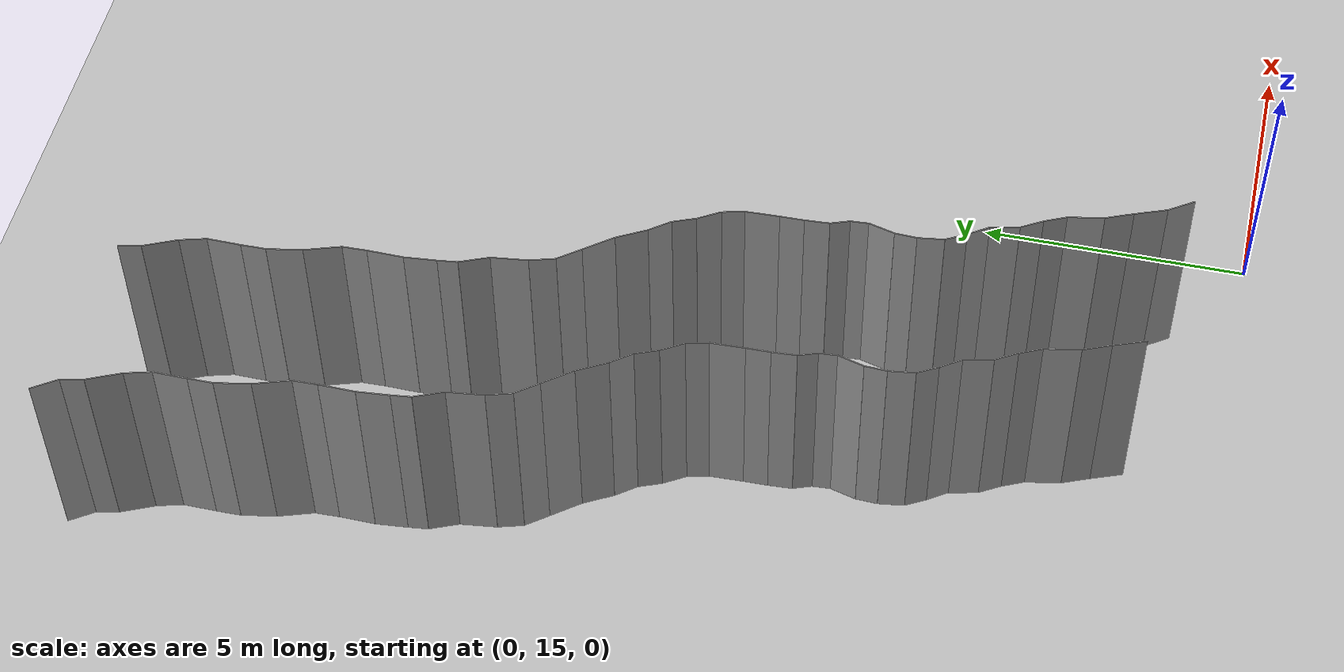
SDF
<sdf version="1.6">
 <world name="default">
  <model name="ground_plane">
   <static>1</static>
   <link name="link">
    <collision name="collision">
     <geometry><plane><normal>0 0 1</normal><size>200 200</size></plane></geometry>
     <surface><friction><ode><mu>100</mu><mu2>50</mu2></ode></friction></surface>
    </collision>
    <visual name="visual">
     <cast_shadows>0</cast_shadows>
     <geometry><plane><normal>0 0 1</normal><size>200 200</size></plane></geometry>
     <material>
      <script><uri>file://media/materials/scripts/gazebo.material</uri><name>Gazebo/Grey</name></script>
     </material>
    </visual>
   </link>
   <pose>0 100 0 0 -0 0</pose>
  </model>
  <model name="wall_73">
   <static>1</static>
   <pose>-1.9631119268316333 16.465281734666583 2 0 0 0.5779256583100791</pose>
   <link name="link">
    <collision name="collision"><geometry><box><size>0.02 0.540771511479 4</size></box></geometry></collision>
    <visual name="visual">
     <material>
      <script><name>Gazebo/Grey</name><uri>file://media/materials/scripts/gazebo.material</uri></script>
     </material>
     <geometry><box><size>0.02 0.540771511479 4</size></box></geometry>
    </visual>
   </link>
  </model>
  <model name="wall_74">
   <static>1</static>
   <pose>-5.2189894164467265 16.98038068064487 2 0 0 0.3585729482220448</pose>
   <link name="link">
    <collision name="collision"><geometry><box><size>0.02 0.616456454361 4</size></box></geometry></collision>
    <visual name="visual">
     <material>
      <script><name>Gazebo/Grey</name><uri>file://media/materials/scripts/gazebo.material</uri></script>
     </material>
     <geometry><box><size>0.02 0.616456454361 4</size></box></geometry>
    </visual>
   </link>
  </model>
  <model name="wall_75">
   <static>1</static>
   <pose>-2.2189894164467265 16.98038068064487 2 0 0 0.3585729482220448</pose>
   <link name="link">
    <collision name="collision"><geometry><box><size>0.02 0.616456454361 4</size></box></geometry></collision>
    <visual name="visual">
     <material>
      <script><name>Gazebo/Grey</name><uri>file://media/materials/scripts/gazebo.material</uri></script>
     </material>
     <geometry><box><size>0.02 0.616456454361 4</size></box></geometry>
    </visual>
   </link>
  </model>
  <model name="wall_76">
   <static>1</static>
   <pose>-5.429013634270137 17.51802696399884 2 0 0 0.388258755482311</pose>
   <link name="link">
    <collision name="collision"><geometry><box><size>0.02 0.538094146848 4</size></box></geometry></collision>
    <visual name="visual">
     <material>
      <script><name>Gazebo/Grey</name><uri>file://media/materials/scripts/gazebo.material</uri></script>
     </material>
     <geometry><box><size>0.02 0.538094146848 4</size></box></geometry>
    </visual>
   </link>
  </model>
  <model name="wall_77">
   <static>1</static>
   <pose>-2.429013634270137 17.51802696399884 2 0 0 0.388258755482311</pose>
   <link name="link">
    <collision name="collision"><geometry><box><size>0.02 0.538094146848 4</size></box></geometry></collision>
    <visual name="visual">
     <material>
      <script><name>Gazebo/Grey</name><uri>file://media/materials/scripts/gazebo.material</uri></script>
     </material>
     <geometry><box><size>0.02 0.538094146848 4</size></box></geometry>
    </visual>
   </link>
  </model>
  <model name="wall_78">
   <static>1</static>
   <pose>-5.592238927250983 18.094138129854752 2 0 0 0.185468775733689</pose>
   <link name="link">
    <collision name="collision"><geometry><box><size>0.02 0.665593706025 4</size></box></geometry></collision>
    <visual name="visual">
     <material>
      <script><name>Gazebo/Grey</name><uri>file://media/materials/scripts/gazebo.material</uri></script>
     </material>
     <geometry><box><size>0.02 0.665593706025 4</size></box></geometry>
    </visual>
   </link>
  </model>
  <model name="wall_79">
   <static>1</static>
   <pose>-2.5922389272509827 18.094138129854752 2 0 0 0.185468775733689</pose>
   <link name="link">
    <collision name="collision"><geometry><box><size>0.02 0.665593706025 4</size></box></geometry></collision>
    <visual name="visual">
     <material>
      <script><name>Gazebo/Grey</name><uri>file://media/materials/scripts/gazebo.material</uri></script>
     </material>
     <geometry><box><size>0.02 0.665593706025 4</size></box></geometry>
    </visual>
   </link>
  </model>
  <model name="wall_80">
   <static>1</static>
   <pose>-5.744420689968435 18.62157502755074 2 0 0 0.4255702106414798</pose>
   <link name="link">
    <collision name="collision"><geometry><box><size>0.02 0.439935826207 4</size></box></geometry></collision>
    <visual name="visual">
     <material>
      <script><name>Gazebo/Grey</name><uri>file://media/materials/scripts/gazebo.material</uri></script>
     </material>
     <geometry><box><size>0.02 0.439935826207 4</size></box></geometry>
    </visual>
   </link>
  </model>
  <model name="wall_81">
   <static>1</static>
   <pose>-2.744420689968435 18.62157502755074 2 0 0 0.4255702106414798</pose>
   <link name="link">
    <collision name="collision"><geometry><box><size>0.02 0.439935826207 4</size></box></geometry></collision>
    <visual name="visual">
     <material>
      <script><name>Gazebo/Grey</name><uri>file://media/materials/scripts/gazebo.material</uri></script>
     </material>
     <geometry><box><size>0.02 0.439935826207 4</size></box></geometry>
    </visual>
   </link>
  </model>
  <model name="wall_82">
   <static>1</static>
   <pose>-5.946961796509764 19.01404491307644 2 0 0 0.5267457993279648</pose>
   <link name="link">
    <collision name="collision"><geometry><box><size>0.02 0.444497374967 4</size></box></geometry></collision>
    <visual name="visual">
     <material>
      <script><name>Gazebo/Grey</name><uri>file://media/materials/scripts/gazebo.material</uri></script>
     </material>
     <geometry><box><size>0.02 0.444497374967 4</size></box></geometry>
    </visual>
   </link>
  </model>
  <model name="wall_83">
   <static>1</static>
   <pose>-2.946961796509764 19.01404491307644 2 0 0 0.5267457993279648</pose>
   <link name="link">
    <collision name="collision"><geometry><box><size>0.02 0.444497374967 4</size></box></geometry></collision>
    <visual name="visual">
     <material>
      <script><name>Gazebo/Grey</name><uri>file://media/materials/scripts/gazebo.material</uri></script>
     </material>
     <geometry><box><size>0.02 0.444497374967 4</size></box></geometry>
    </visual>
   </link>
  </model>
  <model name="wall_84">
   <static>1</static>
   <pose>-6.117549493607555 19.471081117429776 2 0 0 0.21862736636002605</pose>
   <link name="link">
    <collision name="collision"><geometry><box><size>0.02 0.542747229067 4</size></box></geometry></collision>
    <visual name="visual">
     <material>
      <script><name>Gazebo/Grey</name><uri>file://media/materials/scripts/gazebo.material</uri></script>
     </material>
     <geometry><box><size>0.02 0.542747229067 4</size></box></geometry>
    </visual>
   </link>
  </model>
  <model name="wall_85">
   <static>1</static>
   <pose>-3.117549493607555 19.471081117429776 2 0 0 0.21862736636002605</pose>
   <link name="link">
    <collision name="collision"><geometry><box><size>0.02 0.542747229067 4</size></box></geometry></collision>
    <visual name="visual">
     <material>
      <script><name>Gazebo/Grey</name><uri>file://media/materials/scripts/gazebo.material</uri></script>
     </material>
     <geometry><box><size>0.02 0.542747229067 4</size></box></geometry>
    </visual>
   </link>
  </model>
  <model name="wall_86">
   <static>1</static>
   <pose>-6.297129075317542 19.919119000872467 2 0 0 0.5828385238928118</pose>
   <link name="link">
    <collision name="collision"><geometry><box><size>0.02 0.438671008973 4</size></box></geometry></collision>
    <visual name="visual">
     <material>
      <script><name>Gazebo/Grey</name><uri>file://media/materials/scripts/gazebo.material</uri></script>
     </material>
     <geometry><box><size>0.02 0.438671008973 4</size></box></geometry>
    </visual>
   </link>
  </model>
  <model name="wall_87">
   <static>1</static>
   <pose>-3.2971290753175424 19.919119000872467 2 0 0 0.5828385238928118</pose>
   <link name="link">
    <collision name="collision"><geometry><box><size>0.02 0.438671008973 4</size></box></geometry></collision>
    <visual name="visual">
     <material>
      <script><name>Gazebo/Grey</name><uri>file://media/materials/scripts/gazebo.material</uri></script>
     </material>
     <geometry><box><size>0.02 0.438671008973 4</size></box></geometry>
    </visual>
   </link>
  </model>
  <model name="wall_88">
   <static>1</static>
   <pose>-6.516425880368038 20.284080225928516 2 0 0 0.49676395146185637</pose>
   <link name="link">
    <collision name="collision"><geometry><box><size>0.02 0.413675616735 4</size></box></geometry></collision>
    <visual name="visual">
     <material>
      <script><name>Gazebo/Grey</name><uri>file://media/materials/scripts/gazebo.material</uri></script>
     </material>
     <geometry><box><size>0.02 0.413675616735 4</size></box></geometry>
    </visual>
   </link>
  </model>
  <model name="wall_89">
   <static>1</static>
   <pose>-3.516425880368038 20.284080225928516 2 0 0 0.49676395146185637</pose>
   <link name="link">
    <collision name="collision"><geometry><box><size>0.02 0.413675616735 4</size></box></geometry></collision>
    <visual name="visual">
     <material>
      <script><name>Gazebo/Grey</name><uri>file://media/materials/scripts/gazebo.material</uri></script>
     </material>
     <geometry><box><size>0.02 0.413675616735 4</size></box></geometry>
    </visual>
   </link>
  </model>
  <model name="wall_90">
   <static>1</static>
   <pose>-6.6481592495696615 20.708685950705604 2 0 0 0.13574268235274892</pose>
   <link name="link">
    <collision name="collision"><geometry><box><size>0.02 0.490044923519 4</size></box></geometry></collision>
    <visual name="visual">
     <material>
      <script><name>Gazebo/Grey</name><uri>file://media/materials/scripts/gazebo.material</uri></script>
     </material>
     <geometry><box><size>0.02 0.490044923519 4</size></box></geometry>
    </visual>
   </link>
  </model>
  <model name="wall_91">
   <static>1</static>
   <pose>-3.6481592495696615 20.708685950705604 2 0 0 0.13574268235274892</pose>
   <link name="link">
    <collision name="collision"><geometry><box><size>0.02 0.490044923519 4</size></box></geometry></collision>
    <visual name="visual">
     <material>
      <script><name>Gazebo/Grey</name><uri>file://media/materials/scripts/gazebo.material</uri></script>
     </material>
     <geometry><box><size>0.02 0.490044923519 4</size></box></geometry>
    </visual>
   </link>
  </model>
  <model name="wall_92">
   <static>1</static>
   <pose>-6.671682170407955 21.155121208114892 2 0 0 -0.047272616302952916</pose>
   <link name="link">
    <collision name="collision"><geometry><box><size>0.02 0.407789023775 4</size></box></geometry></collision>
    <visual name="visual">
     <material>
      <script><name>Gazebo/Grey</name><uri>file://media/materials/scripts/gazebo.material</uri></script>
     </material>
     <geometry><box><size>0.02 0.407789023775 4</size></box></geometry>
    </visual>
   </link>
  </model>
  <model name="wall_93">
   <static>1</static>
   <pose>-3.671682170407955 21.155121208114892 2 0 0 -0.047272616302952916</pose>
   <link name="link">
    <collision name="collision"><geometry><box><size>0.02 0.407789023775 4</size></box></geometry></collision>
    <visual name="visual">
     <material>
      <script><name>Gazebo/Grey</name><uri>file://media/materials/scripts/gazebo.material</uri></script>
     </material>
     <geometry><box><size>0.02 0.407789023775 4</size></box></geometry>
    </visual>
   </link>
  </model>
  <model name="wall_94">
   <static>1</static>
   <pose>-6.597538932960623 21.600337958711496 2 0 0 -0.26096900439358683</pose>
   <link name="link">
    <collision name="collision"><geometry><box><size>0.02 0.500030874961 4</size></box></geometry></collision>
    <visual name="visual">
     <material>
      <script><name>Gazebo/Grey</name><uri>file://media/materials/scripts/gazebo.material</uri></script>
     </material>
     <geometry><box><size>0.02 0.500030874961 4</size></box></geometry>
    </visual>
   </link>
  </model>
  <model name="wall_95">
   <static>1</static>
   <pose>-3.5975389329606227 21.600337958711496 2 0 0 -0.26096900439358683</pose>
   <link name="link">
    <collision name="collision"><geometry><box><size>0.02 0.500030874961 4</size></box></geometry></collision>
    <visual name="visual">
     <material>
      <script><name>Gazebo/Grey</name><uri>file://media/materials/scripts/gazebo.material</uri></script>
     </material>
     <geometry><box><size>0.02 0.500030874961 4</size></box></geometry>
    </visual>
   </link>
  </model>
  <model name="wall_96">
   <static>1</static>
   <pose>-6.543762042301158 22.008422184159315 2 0 0 0.06435009826860509</pose>
   <link name="link">
    <collision name="collision"><geometry><box><size>0.02 0.333759214409 4</size></box></geometry></collision>
    <visual name="visual">
     <material>
      <script><name>Gazebo/Grey</name><uri>file://media/materials/scripts/gazebo.material</uri></script>
     </material>
     <geometry><box><size>0.02 0.333759214409 4</size></box></geometry>
    </visual>
   </link>
  </model>
  <model name="wall_97">
   <static>1</static>
   <pose>-3.543762042301158 22.008422184159315 2 0 0 0.06435009826860509</pose>
   <link name="link">
    <collision name="collision"><geometry><box><size>0.02 0.333759214409 4</size></box></geometry></collision>
    <visual name="visual">
     <material>
      <script><name>Gazebo/Grey</name><uri>file://media/materials/scripts/gazebo.material</uri></script>
     </material>
     <geometry><box><size>0.02 0.333759214409 4</size></box></geometry>
    </visual>
   </link>
  </model>
  <model name="wall_98">
   <static>1</static>
   <pose>-6.615852534136043 22.34731619755842 2 0 0 0.3420053220446105</pose>
   <link name="link">
    <collision name="collision"><geometry><box><size>0.02 0.365911748592 4</size></box></geometry></collision>
    <visual name="visual">
     <material>
      <script><name>Gazebo/Grey</name><uri>file://media/materials/scripts/gazebo.material</uri></script>
     </material>
     <geometry><box><size>0.02 0.365911748592 4</size></box></geometry>
    </visual>
   </link>
  </model>
  <model name="wall_99">
   <static>1</static>
   <pose>-3.6158525341360432 22.34731619755842 2 0 0 0.3420053220446105</pose>
   <link name="link">
    <collision name="collision"><geometry><box><size>0.02 0.365911748592 4</size></box></geometry></collision>
    <visual name="visual">
     <material>
      <script><name>Gazebo/Grey</name><uri>file://media/materials/scripts/gazebo.material</uri></script>
     </material>
     <geometry><box><size>0.02 0.365911748592 4</size></box></geometry>
    </visual>
   </link>
  </model>
  <model name="wall_100">
   <static>1</static>
   <pose>-6.690214426542392 22.747344946603032 2 0 0 0.05705038092665243</pose>
   <link name="link">
    <collision name="collision"><geometry><box><size>0.02 0.456079897313 4</size></box></geometry></collision>
    <visual name="visual">
     <material>
      <script><name>Gazebo/Grey</name><uri>file://media/materials/scripts/gazebo.material</uri></script>
     </material>
     <geometry><box><size>0.02 0.456079897313 4</size></box></geometry>
    </visual>
   </link>
  </model>
  <model name="wall_101">
   <static>1</static>
   <pose>-3.6902144265423917 22.747344946603032 2 0 0 0.05705038092665243</pose>
   <link name="link">
    <collision name="collision"><geometry><box><size>0.02 0.456079897313 4</size></box></geometry></collision>
    <visual name="visual">
     <material>
      <script><name>Gazebo/Grey</name><uri>file://media/materials/scripts/gazebo.material</uri></script>
     </material>
     <geometry><box><size>0.02 0.456079897313 4</size></box></geometry>
    </visual>
   </link>
  </model>
  <model name="wall_102">
   <static>1</static>
   <pose>-6.706503743326101 23.197165985680666 2 0 0 0.014793320674463073</pose>
   <link name="link">
    <collision name="collision"><geometry><box><size>0.02 0.444352812375 4</size></box></geometry></collision>
    <visual name="visual">
     <material>
      <script><name>Gazebo/Grey</name><uri>file://media/materials/scripts/gazebo.material</uri></script>
     </material>
     <geometry><box><size>0.02 0.444352812375 4</size></box></geometry>
    </visual>
   </link>
  </model>
  <model name="wall_103">
   <static>1</static>
   <pose>-3.7065037433261008 23.197165985680666 2 0 0 0.014793320674463073</pose>
   <link name="link">
    <collision name="collision"><geometry><box><size>0.02 0.444352812375 4</size></box></geometry></collision>
    <visual name="visual">
     <material>
      <script><name>Gazebo/Grey</name><uri>file://media/materials/scripts/gazebo.material</uri></script>
     </material>
     <geometry><box><size>0.02 0.444352812375 4</size></box></geometry>
    </visual>
   </link>
  </model>
  <model name="wall_104">
   <static>1</static>
   <pose>-6.719811738944951 23.733046421032498 2 0 0 0.03193202864452649</pose>
   <link name="link">
    <collision name="collision"><geometry><box><size>0.02 0.62777670951 4</size></box></geometry></collision>
    <visual name="visual">
     <material>
      <script><name>Gazebo/Grey</name><uri>file://media/materials/scripts/gazebo.material</uri></script>
     </material>
     <geometry><box><size>0.02 0.62777670951 4</size></box></geometry>
    </visual>
   </link>
  </model>
  <model name="wall_105">
   <static>1</static>
   <pose>-3.7198117389449514 23.733046421032498 2 0 0 0.03193202864452649</pose>
   <link name="link">
    <collision name="collision"><geometry><box><size>0.02 0.62777670951 4</size></box></geometry></collision>
    <visual name="visual">
     <material>
      <script><name>Gazebo/Grey</name><uri>file://media/materials/scripts/gazebo.material</uri></script>
     </material>
     <geometry><box><size>0.02 0.62777670951 4</size></box></geometry>
    </visual>
   </link>
  </model>
  <model name="wall_106">
   <static>1</static>
   <pose>-6.77884148922455 24.24936823142166 2 0 0 0.23734539275271477</pose>
   <link name="link">
    <collision name="collision"><geometry><box><size>0.02 0.416873764801 4</size></box></geometry></collision>
    <visual name="visual">
     <material>
      <script><name>Gazebo/Grey</name><uri>file://media/materials/scripts/gazebo.material</uri></script>
     </material>
     <geometry><box><size>0.02 0.416873764801 4</size></box></geometry>
    </visual>
   </link>
  </model>
  <model name="wall_107">
   <static>1</static>
   <pose>-3.7788414892245497 24.24936823142166 2 0 0 0.23734539275271477</pose>
   <link name="link">
    <collision name="collision"><geometry><box><size>0.02 0.416873764801 4</size></box></geometry></collision>
    <visual name="visual">
     <material>
      <script><name>Gazebo/Grey</name><uri>file://media/materials/scripts/gazebo.material</uri></script>
     </material>
     <geometry><box><size>0.02 0.416873764801 4</size></box></geometry>
    </visual>
   </link>
  </model>
  <model name="wall_108">
   <static>1</static>
   <pose>-6.948363093024055 24.65370812165242 2 0 0 0.5384687605052095</pose>
   <link name="link">
    <collision name="collision"><geometry><box><size>0.02 0.470000252215 4</size></box></geometry></collision>
    <visual name="visual">
     <material>
      <script><name>Gazebo/Grey</name><uri>file://media/materials/scripts/gazebo.material</uri></script>
     </material>
     <geometry><box><size>0.02 0.470000252215 4</size></box></geometry>
    </visual>
   </link>
  </model>
  <model name="wall_109">
   <static>1</static>
   <pose>-3.9483630930240547 24.65370812165242 2 0 0 0.5384687605052095</pose>
   <link name="link">
    <collision name="collision"><geometry><box><size>0.02 0.470000252215 4</size></box></geometry></collision>
    <visual name="visual">
     <material>
      <script><name>Gazebo/Grey</name><uri>file://media/materials/scripts/gazebo.material</uri></script>
     </material>
     <geometry><box><size>0.02 0.470000252215 4</size></box></geometry>
    </visual>
   </link>
  </model>
  <model name="wall_110">
   <static>1</static>
   <pose>-7.150614478456722 25.062721843203114 2 0 0 0.3756357489796197</pose>
   <link name="link">
    <collision name="collision"><geometry><box><size>0.02 0.44560457186 4</size></box></geometry></collision>
    <visual name="visual">
     <material>
      <script><name>Gazebo/Grey</name><uri>file://media/materials/scripts/gazebo.material</uri></script>
     </material>
     <geometry><box><size>0.02 0.44560457186 4</size></box></geometry>
    </visual>
   </link>
  </model>
  <model name="wall_111">
   <static>1</static>
   <pose>-4.150614478456722 25.062721843203114 2 0 0 0.3756357489796197</pose>
   <link name="link">
    <collision name="collision"><geometry><box><size>0.02 0.44560457186 4</size></box></geometry></collision>
    <visual name="visual">
     <material>
      <script><name>Gazebo/Grey</name><uri>file://media/materials/scripts/gazebo.material</uri></script>
     </material>
     <geometry><box><size>0.02 0.44560457186 4</size></box></geometry>
    </visual>
   </link>
  </model>
  <model name="wall_112">
   <static>1</static>
   <pose>-7.370624029140495 25.456211029345255 2 0 0 0.6386895449676522</pose>
   <link name="link">
    <collision name="collision"><geometry><box><size>0.02 0.463886073 4</size></box></geometry></collision>
    <visual name="visual">
     <material>
      <script><name>Gazebo/Grey</name><uri>file://media/materials/scripts/gazebo.material</uri></script>
     </material>
     <geometry><box><size>0.02 0.463886073 4</size></box></geometry>
    </visual>
   </link>
  </model>
  <model name="wall_113">
   <static>1</static>
   <pose>-4.370624029140495 25.456211029345255 2 0 0 0.6386895449676522</pose>
   <link name="link">
    <collision name="collision"><geometry><box><size>0.02 0.463886073 4</size></box></geometry></collision>
    <visual name="visual">
     <material>
      <script><name>Gazebo/Grey</name><uri>file://media/materials/scripts/gazebo.material</uri></script>
     </material>
     <geometry><box><size>0.02 0.463886073 4</size></box></geometry>
    </visual>
   </link>
  </model>
  <model name="wall_114">
   <static>1</static>
   <pose>-7.65387520175877 25.90808310781274 2 0 0 0.499577798347914</pose>
   <link name="link">
    <collision name="collision"><geometry><box><size>0.02 0.605274014488 4</size></box></geometry></collision>
    <visual name="visual">
     <material>
      <script><name>Gazebo/Grey</name><uri>file://media/materials/scripts/gazebo.material</uri></script>
     </material>
     <geometry><box><size>0.02 0.605274014488 4</size></box></geometry>
    </visual>
   </link>
  </model>
  <model name="wall_115">
   <static>1</static>
   <pose>-4.65387520175877 25.90808310781274 2 0 0 0.499577798347914</pose>
   <link name="link">
    <collision name="collision"><geometry><box><size>0.02 0.605274014488 4</size></box></geometry></collision>
    <visual name="visual">
     <material>
      <script><name>Gazebo/Grey</name><uri>file://media/materials/scripts/gazebo.material</uri></script>
     </material>
     <geometry><box><size>0.02 0.605274014488 4</size></box></geometry>
    </visual>
   </link>
  </model>
  <model name="wall_116">
   <static>1</static>
   <pose>-7.991979326991487 26.427680358967727 2 0 0 0.6501813810294024</pose>
   <link name="link">
    <collision name="collision"><geometry><box><size>0.02 0.638078760111 4</size></box></geometry></collision>
    <visual name="visual">
     <material>
      <script><name>Gazebo/Grey</name><uri>file://media/materials/scripts/gazebo.material</uri></script>
     </material>
     <geometry><box><size>0.02 0.638078760111 4</size></box></geometry>
    </visual>
   </link>
  </model>
  <model name="wall_117">
   <static>1</static>
   <pose>-4.991979326991487 26.427680358967727 2 0 0 0.6501813810294024</pose>
   <link name="link">
    <collision name="collision"><geometry><box><size>0.02 0.638078760111 4</size></box></geometry></collision>
    <visual name="visual">
     <material>
      <script><name>Gazebo/Grey</name><uri>file://media/materials/scripts/gazebo.material</uri></script>
     </material>
     <geometry><box><size>0.02 0.638078760111 4</size></box></geometry>
    </visual>
   </link>
  </model>
  <model name="wall_118">
   <static>1</static>
   <pose>-8.334055194801007 26.87906985543618 2 0 0 0.646314172065566</pose>
   <link name="link">
    <collision name="collision"><geometry><box><size>0.02 0.494651670189 4</size></box></geometry></collision>
    <visual name="visual">
     <material>
      <script><name>Gazebo/Grey</name><uri>file://media/materials/scripts/gazebo.material</uri></script>
     </material>
     <geometry><box><size>0.02 0.494651670189 4</size></box></geometry>
    </visual>
   </link>
  </model>
  <model name="wall_119">
   <static>1</static>
   <pose>-5.334055194801007 26.87906985543618 2 0 0 0.646314172065566</pose>
   <link name="link">
    <collision name="collision"><geometry><box><size>0.02 0.494651670189 4</size></box></geometry></collision>
    <visual name="visual">
     <material>
      <script><name>Gazebo/Grey</name><uri>file://media/materials/scripts/gazebo.material</uri></script>
     </material>
     <geometry><box><size>0.02 0.494651670189 4</size></box></geometry>
    </visual>
   </link>
  </model>
  <model name="wall_120">
   <static>1</static>
   <pose>-8.550628394778697 27.308514859505298 2 0 0 0.283612473526069</pose>
   <link name="link">
    <collision name="collision"><geometry><box><size>0.02 0.483313078969 4</size></box></geometry></collision>
    <visual name="visual">
     <material>
      <script><name>Gazebo/Grey</name><uri>file://media/materials/scripts/gazebo.material</uri></script>
     </material>
     <geometry><box><size>0.02 0.483313078969 4</size></box></geometry>
    </visual>
   </link>
  </model>
  <model name="wall_121">
   <static>1</static>
   <pose>-5.5506283947786965 27.308514859505298 2 0 0 0.283612473526069</pose>
   <link name="link">
    <collision name="collision"><geometry><box><size>0.02 0.483313078969 4</size></box></geometry></collision>
    <visual name="visual">
     <material>
      <script><name>Gazebo/Grey</name><uri>file://media/materials/scripts/gazebo.material</uri></script>
     </material>
     <geometry><box><size>0.02 0.483313078969 4</size></box></geometry>
    </visual>
   </link>
  </model>
  <model name="wall_122">
   <static>1</static>
   <pose>-8.659121818850904 27.878086570502177 2 0 0 0.12049012879172184</pose>
   <link name="link">
    <collision name="collision"><geometry><box><size>0.02 0.680068900343 4</size></box></geometry></collision>
    <visual name="visual">
     <material>
      <script><name>Gazebo/Grey</name><uri>file://media/materials/scripts/gazebo.material</uri></script>
     </material>
     <geometry><box><size>0.02 0.680068900343 4</size></box></geometry>
    </visual>
   </link>
  </model>
  <model name="wall_123">
   <static>1</static>
   <pose>-5.659121818850904 27.878086570502177 2 0 0 0.12049012879172184</pose>
   <link name="link">
    <collision name="collision"><geometry><box><size>0.02 0.680068900343 4</size></box></geometry></collision>
    <visual name="visual">
     <material>
      <script><name>Gazebo/Grey</name><uri>file://media/materials/scripts/gazebo.material</uri></script>
     </material>
     <geometry><box><size>0.02 0.680068900343 4</size></box></geometry>
    </visual>
   </link>
  </model>
  <model name="wall_124">
   <static>1</static>
   <pose>-8.809018211235554 28.479144820289548 2 0 0 0.3923229274872061</pose>
   <link name="link">
    <collision name="collision"><geometry><box><size>0.02 0.57030828163 4</size></box></geometry></collision>
    <visual name="visual">
     <material>
      <script><name>Gazebo/Grey</name><uri>file://media/materials/scripts/gazebo.material</uri></script>
     </material>
     <geometry><box><size>0.02 0.57030828163 4</size></box></geometry>
    </visual>
   </link>
  </model>
  <model name="wall_125">
   <static>1</static>
   <pose>-5.8090182112355535 28.479144820289548 2 0 0 0.3923229274872061</pose>
   <link name="link">
    <collision name="collision"><geometry><box><size>0.02 0.57030828163 4</size></box></geometry></collision>
    <visual name="visual">
     <material>
      <script><name>Gazebo/Grey</name><uri>file://media/materials/scripts/gazebo.material</uri></script>
     </material>
     <geometry><box><size>0.02 0.57030828163 4</size></box></geometry>
    </visual>
   </link>
  </model>
  <model name="wall_126">
   <static>1</static>
   <pose>-8.939539505376409 28.92630043909996 2 0 0 0.11651156712576041</pose>
   <link name="link">
    <collision name="collision"><geometry><box><size>0.02 0.369840475196 4</size></box></geometry></collision>
    <visual name="visual">
     <material>
      <script><name>Gazebo/Grey</name><uri>file://media/materials/scripts/gazebo.material</uri></script>
     </material>
     <geometry><box><size>0.02 0.369840475196 4</size></box></geometry>
    </visual>
   </link>
  </model>
  <model name="wall_127">
   <static>1</static>
   <pose>-5.939539505376409 28.92630043909996 2 0 0 0.11651156712576041</pose>
   <link name="link">
    <collision name="collision"><geometry><box><size>0.02 0.369840475196 4</size></box></geometry></collision>
    <visual name="visual">
     <material>
      <script><name>Gazebo/Grey</name><uri>file://media/materials/scripts/gazebo.material</uri></script>
     </material>
     <geometry><box><size>0.02 0.369840475196 4</size></box></geometry>
    </visual>
   </link>
  </model>
  <model name="wall_128">
   <static>1</static>
   <pose>-8.987577649966394 29.40832038964658 2 0 0 0.08872639993089475</pose>
   <link name="link">
    <collision name="collision"><geometry><box><size>0.02 0.599063348387 4</size></box></geometry></collision>
    <visual name="visual">
     <material>
      <script><name>Gazebo/Grey</name><uri>file://media/materials/scripts/gazebo.material</uri></script>
     </material>
     <geometry><box><size>0.02 0.599063348387 4</size></box></geometry>
    </visual>
   </link>
  </model>
  <model name="wall_129">
   <static>1</static>
   <pose>-5.9875776499663935 29.40832038964658 2 0 0 0.08872639993089475</pose>
   <link name="link">
    <collision name="collision"><geometry><box><size>0.02 0.599063348387 4</size></box></geometry></collision>
    <visual name="visual">
     <material>
      <script><name>Gazebo/Grey</name><uri>file://media/materials/scripts/gazebo.material</uri></script>
     </material>
     <geometry><box><size>0.02 0.599063348387 4</size></box></geometry>
    </visual>
   </link>
  </model>
  <model name="wall_130">
   <static>1</static>
   <pose>-9.008194881643544 30.041585597283078 2 0 0 -0.017687229887613665</pose>
   <link name="link">
    <collision name="collision"><geometry><box><size>0.02 0.669928332553 4</size></box></geometry></collision>
    <visual name="visual">
     <material>
      <script><name>Gazebo/Grey</name><uri>file://media/materials/scripts/gazebo.material</uri></script>
     </material>
     <geometry><box><size>0.02 0.669928332553 4</size></box></geometry>
    </visual>
   </link>
  </model>
  <model name="wall_131">
   <static>1</static>
   <pose>-6.0081948816435435 30.041585597283078 2 0 0 -0.017687229887613665</pose>
   <link name="link">
    <collision name="collision"><geometry><box><size>0.02 0.669928332553 4</size></box></geometry></collision>
    <visual name="visual">
     <material>
      <script><name>Gazebo/Grey</name><uri>file://media/materials/scripts/gazebo.material</uri></script>
     </material>
     <geometry><box><size>0.02 0.669928332553 4</size></box></geometry>
    </visual>
   </link>
  </model>
  <model name="wall_132">
   <static>1</static>
   <pose>-9.007965354640962 30.60278689857153 2 0 0 0.02516046859088362</pose>
   <link name="link">
    <collision name="collision"><geometry><box><size>0.02 0.452722347042 4</size></box></geometry></collision>
    <visual name="visual">
     <material>
      <script><name>Gazebo/Grey</name><uri>file://media/materials/scripts/gazebo.material</uri></script>
     </material>
     <geometry><box><size>0.02 0.452722347042 4</size></box></geometry>
    </visual>
   </link>
  </model>
  <model name="wall_133">
   <static>1</static>
   <pose>-6.007965354640962 30.60278689857153 2 0 0 0.02516046859088362</pose>
   <link name="link">
    <collision name="collision"><geometry><box><size>0.02 0.452722347042 4</size></box></geometry></collision>
    <visual name="visual">
     <material>
      <script><name>Gazebo/Grey</name><uri>file://media/materials/scripts/gazebo.material</uri></script>
     </material>
     <geometry><box><size>0.02 0.452722347042 4</size></box></geometry>
    </visual>
   </link>
  </model>
  <model name="wall_134">
   <static>1</static>
   <pose>-9.120851475267049 31.1571562491707 2 0 0 0.3157899016740692</pose>
   <link name="link">
    <collision name="collision"><geometry><box><size>0.02 0.690293732149 4</size></box></geometry></collision>
    <visual name="visual">
     <material>
      <script><name>Gazebo/Grey</name><uri>file://media/materials/scripts/gazebo.material</uri></script>
     </material>
     <geometry><box><size>0.02 0.690293732149 4</size></box></geometry>
    </visual>
   </link>
  </model>
  <model name="wall_135">
   <static>1</static>
   <pose>-6.120851475267049 31.1571562491707 2 0 0 0.3157899016740692</pose>
   <link name="link">
    <collision name="collision"><geometry><box><size>0.02 0.690293732149 4</size></box></geometry></collision>
    <visual name="visual">
     <material>
      <script><name>Gazebo/Grey</name><uri>file://media/materials/scripts/gazebo.material</uri></script>
     </material>
     <geometry><box><size>0.02 0.690293732149 4</size></box></geometry>
    </visual>
   </link>
  </model>
  <model name="wall_136">
   <static>1</static>
   <pose>-9.285880254306491 31.807191610973586 2 0 0 0.177748178805022</pose>
   <link name="link">
    <collision name="collision"><geometry><box><size>0.02 0.654218726651 4</size></box></geometry></collision>
    <visual name="visual">
     <material>
      <script><name>Gazebo/Grey</name><uri>file://media/materials/scripts/gazebo.material</uri></script>
     </material>
     <geometry><box><size>0.02 0.654218726651 4</size></box></geometry>
    </visual>
   </link>
  </model>
  <model name="wall_137">
   <static>1</static>
   <pose>-6.285880254306491 31.807191610973586 2 0 0 0.177748178805022</pose>
   <link name="link">
    <collision name="collision"><geometry><box><size>0.02 0.654218726651 4</size></box></geometry></collision>
    <visual name="visual">
     <material>
      <script><name>Gazebo/Grey</name><uri>file://media/materials/scripts/gazebo.material</uri></script>
     </material>
     <geometry><box><size>0.02 0.654218726651 4</size></box></geometry>
    </visual>
   </link>
  </model>
  <model name="wall_138">
   <static>1</static>
   <pose>-9.345895797588234 32.35864689553095 2 0 0 0.009490499281462558</pose>
   <link name="link">
    <collision name="collision"><geometry><box><size>0.02 0.459020161582 4</size></box></geometry></collision>
    <visual name="visual">
     <material>
      <script><name>Gazebo/Grey</name><uri>file://media/materials/scripts/gazebo.material</uri></script>
     </material>
     <geometry><box><size>0.02 0.459020161582 4</size></box></geometry>
    </visual>
   </link>
  </model>
  <model name="wall_139">
   <static>1</static>
   <pose>-6.345895797588234 32.35864689553095 2 0 0 0.009490499281462558</pose>
   <link name="link">
    <collision name="collision"><geometry><box><size>0.02 0.459020161582 4</size></box></geometry></collision>
    <visual name="visual">
     <material>
      <script><name>Gazebo/Grey</name><uri>file://media/materials/scripts/gazebo.material</uri></script>
     </material>
     <geometry><box><size>0.02 0.459020161582 4</size></box></geometry>
    </visual>
   </link>
  </model>
  <model name="wall_140">
   <static>1</static>
   <pose>-9.343944805490723 32.89965776542649 2 0 0 -0.013254367256573127</pose>
   <link name="link">
    <collision name="collision"><geometry><box><size>0.02 0.623076979665 4</size></box></geometry></collision>
    <visual name="visual">
     <material>
      <script><name>Gazebo/Grey</name><uri>file://media/materials/scripts/gazebo.material</uri></script>
     </material>
     <geometry><box><size>0.02 0.623076979665 4</size></box></geometry>
    </visual>
   </link>
  </model>
  <model name="wall_141">
   <static>1</static>
   <pose>-6.3439448054907235 32.89965776542649 2 0 0 -0.013254367256573127</pose>
   <link name="link">
    <collision name="collision"><geometry><box><size>0.02 0.623076979665 4</size></box></geometry></collision>
    <visual name="visual">
     <material>
      <script><name>Gazebo/Grey</name><uri>file://media/materials/scripts/gazebo.material</uri></script>
     </material>
     <geometry><box><size>0.02 0.623076979665 4</size></box></geometry>
    </visual>
   </link>
  </model>
  <model name="wall_142">
   <static>1</static>
   <pose>-9.40614178252518 33.452088158449676 2 0 0 0.26864906038618985</pose>
   <link name="link">
    <collision name="collision"><geometry><box><size>0.02 0.49976492669 4</size></box></geometry></collision>
    <visual name="visual">
     <material>
      <script><name>Gazebo/Grey</name><uri>file://media/materials/scripts/gazebo.material</uri></script>
     </material>
     <geometry><box><size>0.02 0.49976492669 4</size></box></geometry>
    </visual>
   </link>
  </model>
  <model name="wall_143">
   <static>1</static>
   <pose>-6.4061417825251805 33.452088158449676 2 0 0 0.26864906038618985</pose>
   <link name="link">
    <collision name="collision"><geometry><box><size>0.02 0.49976492669 4</size></box></geometry></collision>
    <visual name="visual">
     <material>
      <script><name>Gazebo/Grey</name><uri>file://media/materials/scripts/gazebo.material</uri></script>
     </material>
     <geometry><box><size>0.02 0.49976492669 4</size></box></geometry>
    </visual>
   </link>
  </model>
  <model name="wall_144">
   <static>1</static>
   <pose>-9.606244066949168 33.99462676846533 2 0 0 0.4174575698800587</pose>
   <link name="link">
    <collision name="collision"><geometry><box><size>0.02 0.659909977222 4</size></box></geometry></collision>
    <visual name="visual">
     <material>
      <script><name>Gazebo/Grey</name><uri>file://media/materials/scripts/gazebo.material</uri></script>
     </material>
     <geometry><box><size>0.02 0.659909977222 4</size></box></geometry>
    </visual>
   </link>
  </model>
  <model name="wall_145">
   <static>1</static>
   <pose>-6.606244066949168 33.99462676846533 2 0 0 0.4174575698800587</pose>
   <link name="link">
    <collision name="collision"><geometry><box><size>0.02 0.659909977222 4</size></box></geometry></collision>
    <visual name="visual">
     <material>
      <script><name>Gazebo/Grey</name><uri>file://media/materials/scripts/gazebo.material</uri></script>
     </material>
     <geometry><box><size>0.02 0.659909977222 4</size></box></geometry>
    </visual>
   </link>
  </model>
  <model name="wall_146">
   <static>1</static>
   <pose>-9.78361370247949 34.502198616952505 2 0 0 0.20858872954568594</pose>
   <link name="link">
    <collision name="collision"><geometry><box><size>0.02 0.421031229591 4</size></box></geometry></collision>
    <visual name="visual">
     <material>
      <script><name>Gazebo/Grey</name><uri>file://media/materials/scripts/gazebo.material</uri></script>
     </material>
     <geometry><box><size>0.02 0.421031229591 4</size></box></geometry>
    </visual>
   </link>
  </model>
  <model name="wall_147">
   <static>1</static>
   <pose>-6.7836137024794905 34.502198616952505 2 0 0 0.20858872954568594</pose>
   <link name="link">
    <collision name="collision"><geometry><box><size>0.02 0.421031229591 4</size></box></geometry></collision>
    <visual name="visual">
     <material>
      <script><name>Gazebo/Grey</name><uri>file://media/materials/scripts/gazebo.material</uri></script>
     </material>
     <geometry><box><size>0.02 0.421031229591 4</size></box></geometry>
    </visual>
   </link>
  </model>
  <model name="wall_148">
   <static>1</static>
   <pose>-9.973516552069897 34.92768637609638 2 0 0 0.5878529912945827</pose>
   <link name="link">
    <collision name="collision"><geometry><box><size>0.02 0.527644451236 4</size></box></geometry></collision>
    <visual name="visual">
     <material>
      <script><name>Gazebo/Grey</name><uri>file://media/materials/scripts/gazebo.material</uri></script>
     </material>
     <geometry><box><size>0.02 0.527644451236 4</size></box></geometry>
    </visual>
   </link>
  </model>
 </world>
</sdf>
